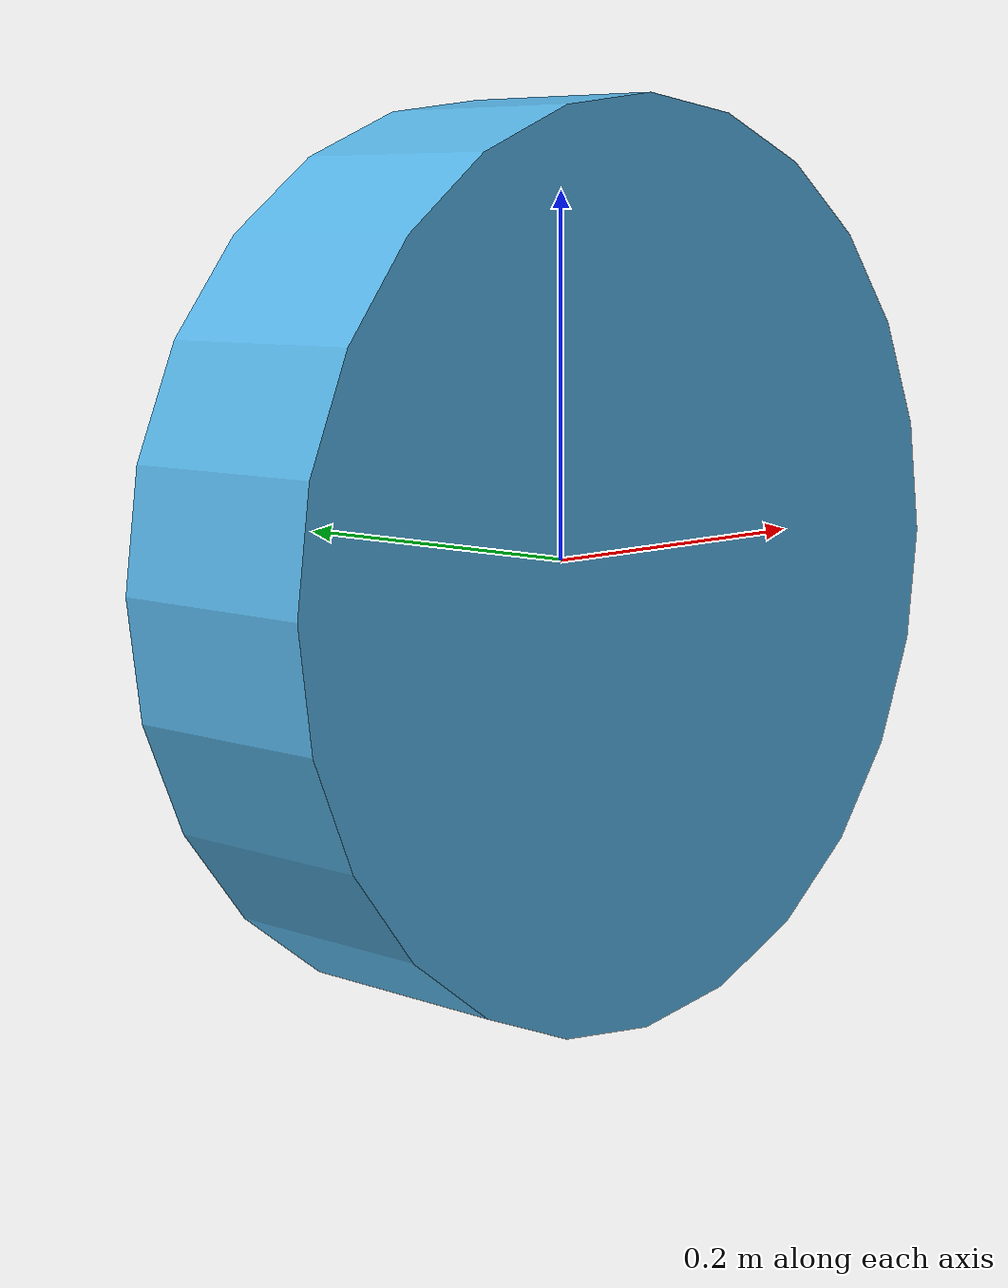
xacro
<?xml version='1.0'?>
<robot xmlns:xacro="http://www.ros.org/wiki/xacro" name="robot_car">

    <xacro:property name="blx" value="${10/10}" />
    <xacro:property name="bly" value="${8/10}" />
    <xacro:property name="blz" value="${5/10}" />

    <xacro:property name="olx" value="${2.5/10}" />
    <xacro:property name="oly" value="${(4+1.25/2)/10}" />
    <xacro:property name="olz" value="${1.25/10}" />

    <xacro:property name="crad" value="${5/10/2}" />
    <xacro:property name="clen" value="${1.25/10}" />

    <xacro:property name="srad" value="${2.5/10/2}" />
    <xacro:property name="slx" value="${(10-2.5/2)/10}" />

    <xacro:macro name="wheel_macro" params="p_name p_radius p_length">
        <link name="${p_name}">
            <visual>
                <geometry>
                    <cylinder radius="${p_radius}" length="${p_length}"/>
                </geometry>
                <origin xyz="0 0 0" rpy="-${pi/2} 0 0"/>
            </visual>

            <inertial>
                <mass value="1"/>
                <origin xyz="0 0 0" rpy="0 0 0"/>
                <inertia ixx="1" ixy="0" ixz="0" iyy="1" iyz="0" izz="1"/>
            </inertial>

            <collision>
                <geometry>
                    <cylinder radius="${p_radius}" length="${p_length}"/>
                </geometry>
                <origin xyz="0 0 0" rpy="0 0 0"/>
            </collision>
        </link>
    </xacro:macro>

    <!-- full body -->

    <link name="base_link">
        <!-- virtual link -->
    </link>

    <joint name="baselink_rwheellink" type="continuous">
        <parent link="base_link"/>
        <child link="rwheel_link"/>
        <origin xyz="0 0 0" rpy="0 0 0"/>
    </joint>

    <xacro:wheel_macro p_name = "rwheel_link"
                       p_radius = "${crad}"
                       p_length = "${clen}"/>

</robot>
